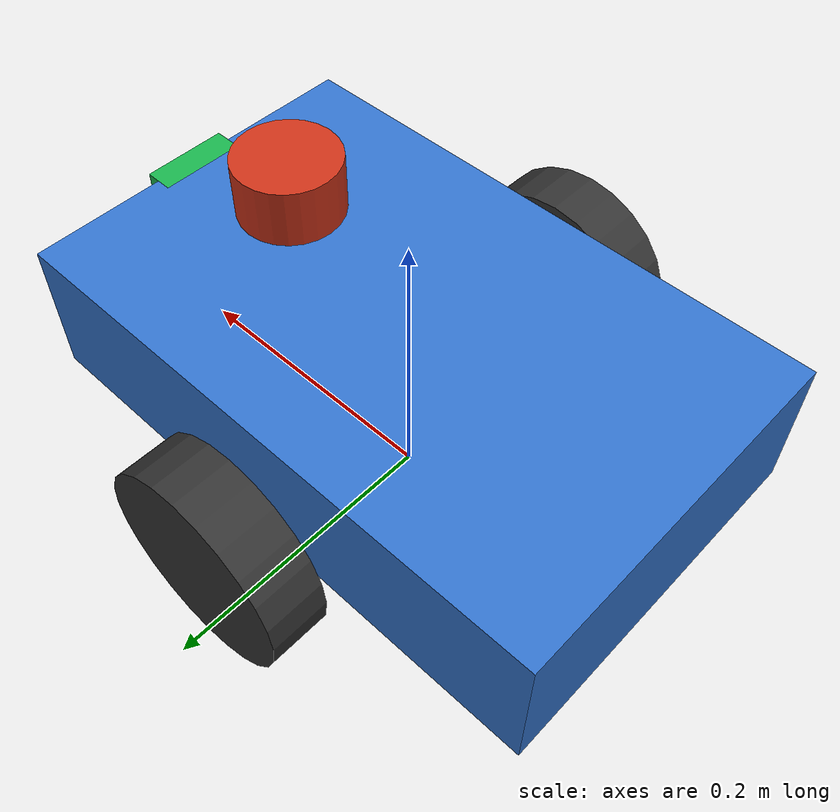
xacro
<?xml version="1.0"?>
<robot xmlns:xacro="http://www.ros.org/wiki/xacro" name="edubot">

  <!-- Single source of truth for the numbers shared with model.sdf. -->
  <xacro:property name="wheel_radius"    value="0.07"/>
  <xacro:property name="wheel_width"     value="0.04"/>
  <xacro:property name="wheel_separation" value="0.32"/>
  <xacro:property name="base_length"     value="0.4"/>
  <xacro:property name="base_width"      value="0.25"/>
  <xacro:property name="base_height"     value="0.1"/>

  <material name="blue">  <color rgba="0.2 0.45 0.8 1"/></material>
  <material name="dark">  <color rgba="0.2 0.2 0.2 1"/></material>
  <material name="red">   <color rgba="0.8 0.2 0.1 1"/></material>
  <material name="green"> <color rgba="0.1 0.7 0.3 1"/></material>

  <!-- base_footprint sits on the ground directly under base_link. Nav2
       and most navigation tooling expect this frame to exist. -->
  <link name="base_footprint"/>

  <link name="base_link">
    <visual>
      <geometry><box size="${base_length} ${base_width} ${base_height}"/></geometry>
      <material name="blue"/>
    </visual>
    <collision>
      <geometry><box size="${base_length} ${base_width} ${base_height}"/></geometry>
    </collision>
    <inertial>
      <mass value="5.0"/>
      <inertia ixx="0.0302" ixy="0" ixz="0" iyy="0.0708" iyz="0" izz="0.0927"/>
    </inertial>
  </link>

  <joint name="base_footprint_joint" type="fixed">
    <parent link="base_footprint"/>
    <child  link="base_link"/>
    <origin xyz="0 0 0.1" rpy="0 0 0"/>
  </joint>

  <!-- One macro, two wheels: reflect is +1 for left, -1 for right. -->
  <xacro:macro name="wheel" params="prefix reflect">
    <link name="${prefix}_wheel">
      <visual>
        <origin xyz="0 0 0" rpy="1.5707 0 0"/>
        <geometry><cylinder radius="${wheel_radius}" length="${wheel_width}"/></geometry>
        <material name="dark"/>
      </visual>
      <collision>
        <origin xyz="0 0 0" rpy="1.5707 0 0"/>
        <geometry><cylinder radius="${wheel_radius}" length="${wheel_width}"/></geometry>
      </collision>
      <inertial>
        <mass value="0.5"/>
        <inertia ixx="0.000795" ixy="0" ixz="0" iyy="0.000795" iyz="0" izz="0.00125"/>
      </inertial>
    </link>

    <joint name="${prefix}_wheel_joint" type="continuous">
      <parent link="base_link"/>
      <child  link="${prefix}_wheel"/>
      <origin xyz="0 ${reflect * wheel_separation / 2} -0.03" rpy="0 0 0"/>
      <axis xyz="0 1 0"/>
    </joint>
  </xacro:macro>

  <xacro:wheel prefix="left"  reflect="1"/>
  <xacro:wheel prefix="right" reflect="-1"/>

  <link name="caster">
    <visual>
      <geometry><sphere radius="0.04"/></geometry>
      <material name="dark"/>
    </visual>
    <collision>
      <geometry><sphere radius="0.04"/></geometry>
    </collision>
    <inertial>
      <mass value="0.1"/>
      <inertia ixx="1.6e-5" ixy="0" ixz="0" iyy="1.6e-5" iyz="0" izz="1.6e-5"/>
    </inertial>
  </link>

  <joint name="caster_joint" type="fixed">
    <parent link="base_link"/>
    <child  link="caster"/>
    <origin xyz="-0.15 0 -0.06" rpy="0 0 0"/>
  </joint>

  <!-- Sensor frames. These carry no geometry that matters to physics;
       they exist so sensor data has somewhere to attach in the TF tree. -->
  <link name="lidar_link">
    <visual>
      <geometry><cylinder radius="0.035" length="0.04"/></geometry>
      <material name="red"/>
    </visual>
    <inertial>
      <mass value="0.1"/>
      <inertia ixx="4e-5" ixy="0" ixz="0" iyy="4e-5" iyz="0" izz="4e-5"/>
    </inertial>
  </link>

  <joint name="lidar_joint" type="fixed">
    <parent link="base_link"/>
    <child  link="lidar_link"/>
    <origin xyz="0.1 0 0.09" rpy="0 0 0"/>
  </joint>

  <link name="camera_link">
    <visual>
      <geometry><box size="0.02 0.06 0.04"/></geometry>
      <material name="green"/>
    </visual>
    <inertial>
      <mass value="0.1"/>
      <inertia ixx="1e-5" ixy="0" ixz="0" iyy="1e-5" iyz="0" izz="1e-5"/>
    </inertial>
  </link>

  <joint name="camera_joint" type="fixed">
    <parent link="base_link"/>
    <child  link="camera_link"/>
    <origin xyz="0.2 0 0.03" rpy="0 0 0"/>
  </joint>

  <link name="imu_link">
    <inertial>
      <mass value="0.05"/>
      <inertia ixx="1e-6" ixy="0" ixz="0" iyy="1e-6" iyz="0" izz="1e-6"/>
    </inertial>
  </link>

  <joint name="imu_joint" type="fixed">
    <parent link="base_link"/>
    <child  link="imu_link"/>
    <origin xyz="0 0 0.05" rpy="0 0 0"/>
  </joint>
</robot>
